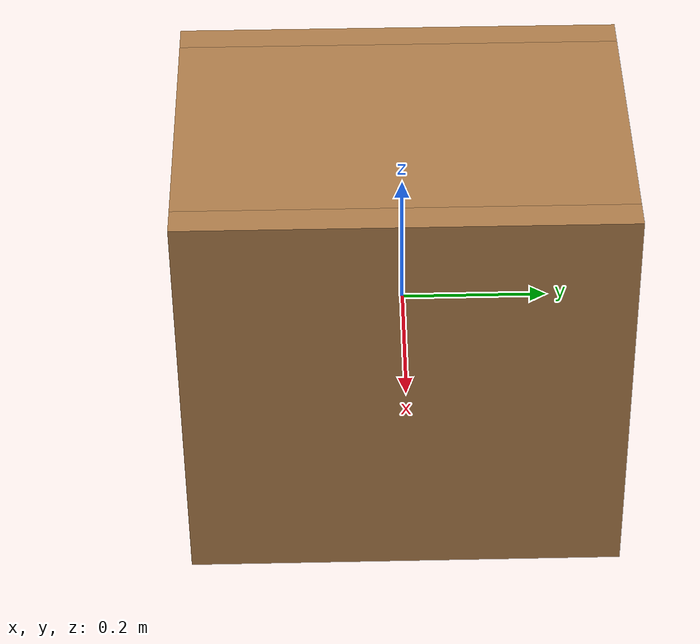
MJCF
<mujoco model="hinge_cab">
  <compiler angle="radian"/>
  <asset>
    <texture file="visuals/wood1.png" type="cube" name="tex"/>
    <material name="mat" shininess="0.1" texture="tex"/>
  </asset>
  <default>
    <default class="cab">
      <geom group="0" density="10"/>
    </default>
    <default class="region">
      <geom group="1" conaffinity="0" contype="0" rgba="0 1 0 0"/>
    </default>
  </default>
  <worldbody>
    <body>
      <body name="object">
        <geom pos="0.0 0 0.28" size="0.18 0.3 0.02" type="box" mass=".2" material="mat" class="cab" name="top"/>
        <geom pos="0.0 0 -0.28" size="0.18 0.3 0.02" type="box" mass=".2" material="mat" class="cab" name="bottom"/>
        <geom pos="0.0 0.28 0" size="0.18 0.02 0.26" type="box" mass=".2" material="mat" class="cab" name="back"/>
        <geom pos="0.20 0 0" size="0.02 0.3 0.3" type="box" mass=".2" material="mat" class="cab" name="right"/>
        <geom pos="-0.20 0 0" size="0.02 0.3 0.3" type="box" mass=".2" material="mat" class="cab" name="left"/>
        <body name="hingedoor" pos="0.20 -0.32 0">
          <joint axis="0 0 1" name="doorhinge" limited="true" range="0 1.57" damping="2"/>
          <site rgba="1 0 0 0" size="0.005" pos="0.0 -0.20 0" name="door_p1"/>
          <site rgba="0 1 0 0" size="0.005" pos="0.05 -0.20 0" name="door_p2"/>
          <site rgba="0 0 1 0" size="0.005" pos="0.0 -0.20 0.05" name="door_p3"/>
        </body>
        <!-- exterior bounding box points -->
        <geom class="region" name="reg_main" type="box" pos="0.0 0.0 0.0" size="0.0001 0.0001 0.0001"/>
      </body>
    </body>
  </worldbody>
</mujoco>
